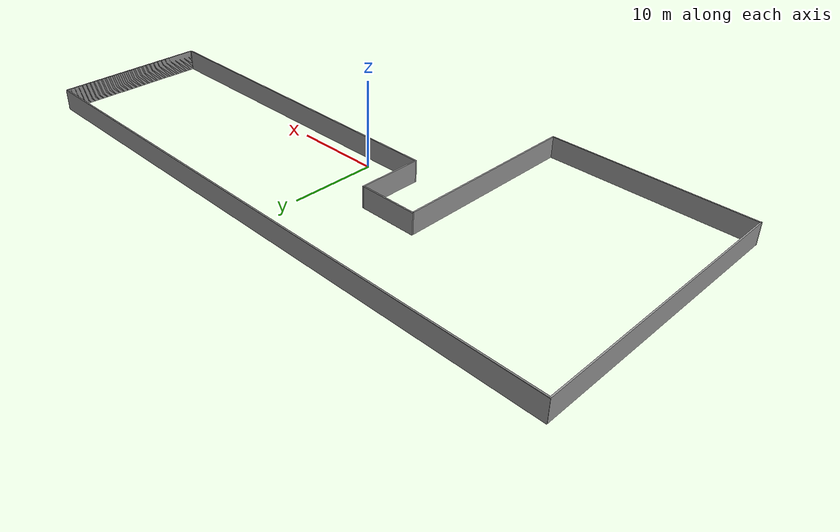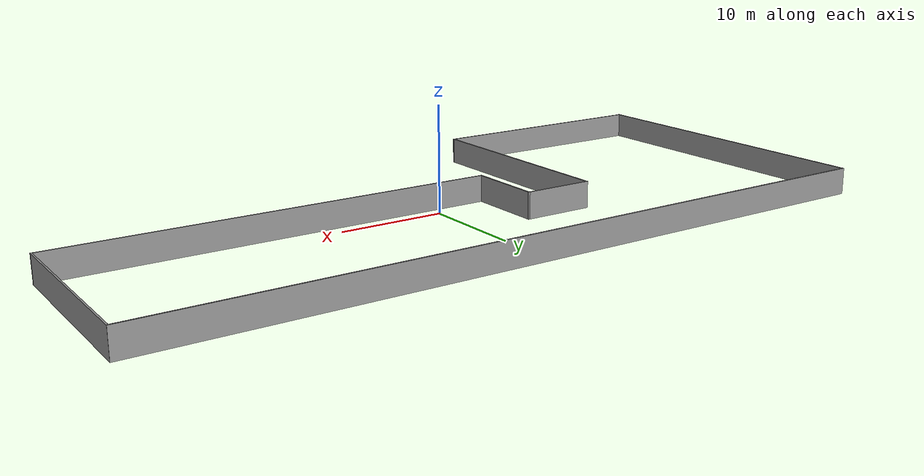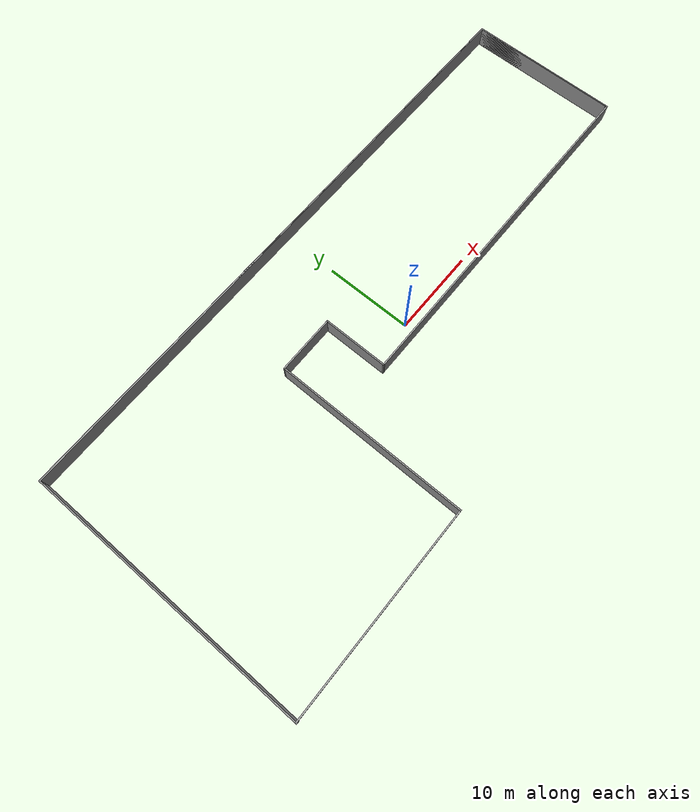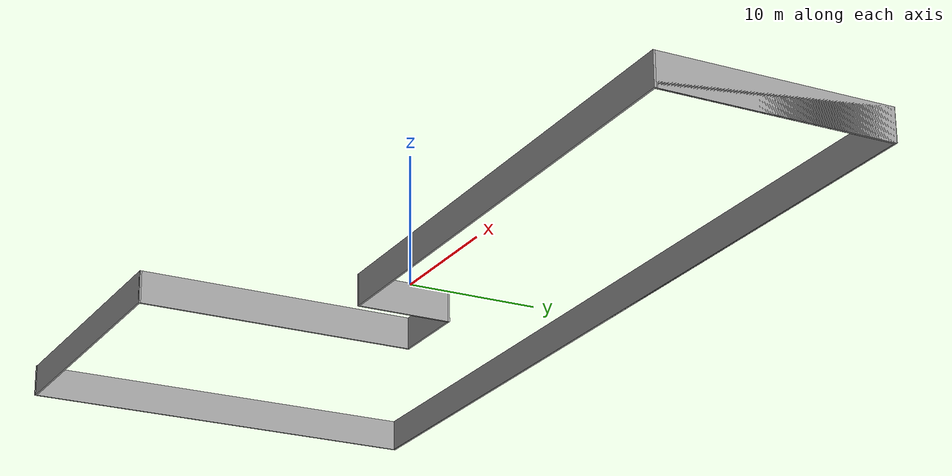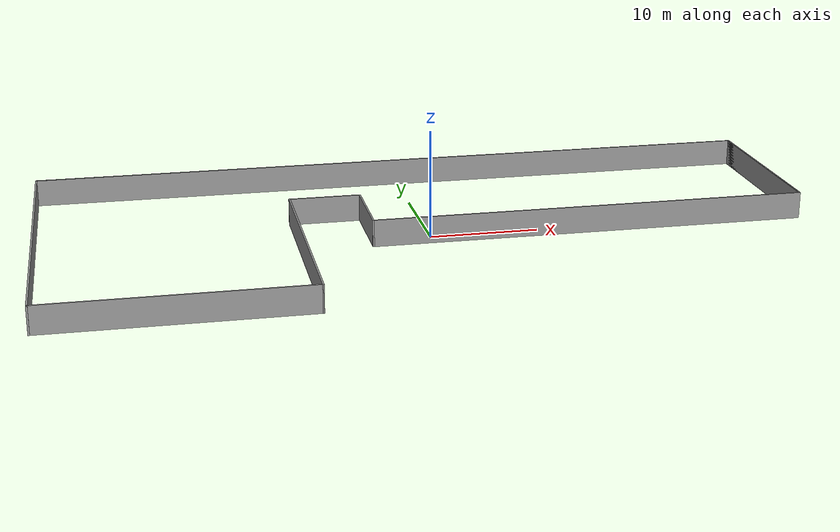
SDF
<?xml version='1.0'?>
<sdf version='1.6'>
  <model name='Altorfer'>
    <pose frame=''>-0.098526 0.142129 0 0 -0 0</pose>
    <link name='Wall_0'>
      <collision name='Wall_0_Collision'>
        <geometry>
          <box>
            <size>70.5 0.15 2.5</size>
          </box>
        </geometry>
        <pose frame=''>0 0 1.25 0 -0 0</pose>
      </collision>
      <visual name='Wall_0_Visual'>
        <pose frame=''>0 0 1.25 0 -0 0</pose>
        <geometry>
          <box>
            <size>70.5 0.15 2.5</size>
          </box>
        </geometry>
        <material>
          <script>
            <uri>file://media/materials/scripts/gazebo.material</uri>
            <name>Gazebo/Grey</name>
          </script>
          <ambient>1 1 1 1</ambient>
        </material>
        <meta>
          <layer>0</layer>
        </meta>
      </visual>
      <pose frame=''>0.00181 16.0233 0 0 -0 0</pose>
    </link>
    <link name='Wall_1'>
      <collision name='Wall_1_Collision'>
        <geometry>
          <box>
            <size>17.75 0.15 2.5</size>
          </box>
        </geometry>
        <pose frame=''>0 0 1.25 0 -0 0</pose>
      </collision>
      <visual name='Wall_1_Visual'>
        <pose frame=''>0 0 1.25 0 -0 0</pose>
        <geometry>
          <box>
            <size>17.75 0.15 2.5</size>
          </box>
        </geometry>
        <material>
          <script>
            <uri>file://media/materials/scripts/gazebo.material</uri>
            <name>Gazebo/Grey</name>
          </script>
          <ambient>1 1 1 1</ambient>
        </material>
        <meta>
          <layer>0</layer>
        </meta>
      </visual>
      <pose frame=''>35.1768 7.22331 0 0 0 -1.5708</pose>
    </link>
    <link name='Wall_10'>
      <collision name='Wall_10_Collision'>
        <geometry>
          <box>
            <size>70.5035 0.15 2.5</size>
          </box>
        </geometry>
        <pose frame=''>0 0 1.25 0 -0 0</pose>
      </collision>
      <visual name='Wall_10_Visual'>
        <pose frame=''>0 0 1.25 0 -0 0</pose>
        <geometry>
          <box>
            <size>70.5035 0.15 2.5</size>
          </box>
        </geometry>
        <material>
          <script>
            <uri>file://media/materials/scripts/gazebo.material</uri>
            <name>Gazebo/Grey</name>
          </script>
          <ambient>1 1 1 1</ambient>
        </material>
        <meta>
          <layer>0</layer>
        </meta>
      </visual>
      <pose frame=''>5.9e-05 16.0501 0 0 0 -0.00076</pose>
    </link>
    <link name='Wall_12'>
      <collision name='Wall_12_Collision'>
        <geometry>
          <box>
            <size>70.5035 0.15 2.5</size>
          </box>
        </geometry>
        <pose frame=''>0 0 1.25 0 -0 0</pose>
      </collision>
      <visual name='Wall_12_Visual'>
        <pose frame=''>0 0 1.25 0 -0 0</pose>
        <geometry>
          <box>
            <size>70.5035 0.15 2.5</size>
          </box>
        </geometry>
        <material>
          <script>
            <uri>file://media/materials/scripts/gazebo.material</uri>
            <name>Gazebo/Grey</name>
          </script>
          <ambient>1 1 1 1</ambient>
        </material>
        <meta>
          <layer>0</layer>
        </meta>
      </visual>
      <pose frame=''>5.9e-05 16.0501 0 0 0 -0.00076</pose>
    </link>
    <link name='Wall_13'>
      <collision name='Wall_13_Collision'>
        <geometry>
          <box>
            <size>0.15 0.15 2.5</size>
          </box>
        </geometry>
        <pose frame=''>0 0 1.25 0 -0 0</pose>
      </collision>
      <visual name='Wall_13_Visual'>
        <pose frame=''>0 0 1.25 0 -0 0</pose>
        <geometry>
          <box>
            <size>0.15 0.15 2.5</size>
          </box>
        </geometry>
        <material>
          <script>
            <uri>file://media/materials/scripts/gazebo.material</uri>
            <name>Gazebo/Grey</name>
          </script>
          <ambient>1 1 1 1</ambient>
        </material>
        <meta>
          <layer>0</layer>
        </meta>
      </visual>
      <pose frame=''>35.1768 16.0233 0 0 -0 0</pose>
    </link>
    <link name='Wall_14'>
      <collision name='Wall_14_Collision'>
        <geometry>
          <box>
            <size>17.5 0.15 2.5</size>
          </box>
        </geometry>
        <pose frame=''>0 0 1.25 0 -0 0</pose>
      </collision>
      <visual name='Wall_14_Visual'>
        <pose frame=''>0 0 1.25 0 -0 0</pose>
        <geometry>
          <box>
            <size>17.5 0.15 2.5</size>
          </box>
        </geometry>
        <material>
          <script>
            <uri>file://media/materials/scripts/gazebo.material</uri>
            <name>Gazebo/Grey</name>
          </script>
          <ambient>1 1 1 1</ambient>
        </material>
        <meta>
          <layer>0</layer>
        </meta>
      </visual>
      <pose frame=''>35.1768 7.34831 0 0 0 -1.5708</pose>
    </link>
    <link name='Wall_2'>
      <collision name='Wall_2_Collision'>
        <geometry>
          <box>
            <size>40.75 0.15 2.5</size>
          </box>
        </geometry>
        <pose frame=''>0 0 1.25 0 -0 0</pose>
      </collision>
      <visual name='Wall_2_Visual'>
        <pose frame=''>0 0 1.25 0 -0 0</pose>
        <geometry>
          <box>
            <size>40.75 0.15 2.5</size>
          </box>
        </geometry>
        <material>
          <script>
            <uri>file://media/materials/scripts/gazebo.material</uri>
            <name>Gazebo/Grey</name>
          </script>
          <ambient>1 1 1 1</ambient>
        </material>
        <meta>
          <layer>0</layer>
        </meta>
      </visual>
      <pose frame=''>14.8768 -1.57669 0 0 -0 3.14159</pose>
    </link>
    <link name='Wall_3'>
      <collision name='Wall_3_Collision'>
        <geometry>
          <box>
            <size>7.5 0.15 2.5</size>
          </box>
        </geometry>
        <pose frame=''>0 0 1.25 0 -0 0</pose>
      </collision>
      <visual name='Wall_3_Visual'>
        <pose frame=''>0 0 1.25 0 -0 0</pose>
        <geometry>
          <box>
            <size>7.5 0.15 2.5</size>
          </box>
        </geometry>
        <material>
          <script>
            <uri>file://media/materials/scripts/gazebo.material</uri>
            <name>Gazebo/Grey</name>
          </script>
          <ambient>1 1 1 1</ambient>
        </material>
        <meta>
          <layer>0</layer>
        </meta>
      </visual>
      <pose frame=''>-5.42319 2.09831 0 0 -0 1.5708</pose>
    </link>
    <link name='Wall_4'>
      <collision name='Wall_4_Collision'>
        <geometry>
          <box>
            <size>6.75 0.15 2.5</size>
          </box>
        </geometry>
        <pose frame=''>0 0 1.25 0 -0 0</pose>
      </collision>
      <visual name='Wall_4_Visual'>
        <pose frame=''>0 0 1.25 0 -0 0</pose>
        <geometry>
          <box>
            <size>6.75 0.15 2.5</size>
          </box>
        </geometry>
        <material>
          <script>
            <uri>file://media/materials/scripts/gazebo.material</uri>
            <name>Gazebo/Grey</name>
          </script>
          <ambient>1 1 1 1</ambient>
        </material>
        <meta>
          <layer>0</layer>
        </meta>
      </visual>
      <pose frame=''>-8.72319 5.77331 0 0 -0 3.14159</pose>
    </link>
    <link name='Wall_5'>
      <collision name='Wall_5_Collision'>
        <geometry>
          <box>
            <size>22 0.15 2.5</size>
          </box>
        </geometry>
        <pose frame=''>0 0 1.25 0 -0 0</pose>
      </collision>
      <visual name='Wall_5_Visual'>
        <pose frame=''>0 0 1.25 0 -0 0</pose>
        <geometry>
          <box>
            <size>22 0.15 2.5</size>
          </box>
        </geometry>
        <material>
          <script>
            <uri>file://media/materials/scripts/gazebo.material</uri>
            <name>Gazebo/Grey</name>
          </script>
          <ambient>1 1 1 1</ambient>
        </material>
        <meta>
          <layer>0</layer>
        </meta>
      </visual>
      <pose frame=''>-12.0232 -5.15169 0 0 0 -1.5708</pose>
    </link>
    <link name='Wall_6'>
      <collision name='Wall_6_Collision'>
        <geometry>
          <box>
            <size>23.3036 0.15 2.5</size>
          </box>
        </geometry>
        <pose frame=''>0 0 1.25 0 -0 0</pose>
      </collision>
      <visual name='Wall_6_Visual'>
        <pose frame=''>0 0 1.25 0 -0 0</pose>
        <geometry>
          <box>
            <size>23.3036 0.15 2.5</size>
          </box>
        </geometry>
        <material>
          <script>
            <uri>file://media/materials/scripts/gazebo.material</uri>
            <name>Gazebo/Grey</name>
          </script>
          <ambient>1 1 1 1</ambient>
        </material>
        <meta>
          <layer>0</layer>
        </meta>
      </visual>
      <pose frame=''>-23.5999 -16.0499 0 0 -0 3.13928</pose>
    </link>
    <link name='Wall_7'>
      <collision name='Wall_7_Collision'>
        <geometry>
          <box>
            <size>32.25 0.15 2.5</size>
          </box>
        </geometry>
        <pose frame=''>0 0 1.25 0 -0 0</pose>
      </collision>
      <visual name='Wall_7_Visual'>
        <pose frame=''>0 0 1.25 0 -0 0</pose>
        <geometry>
          <box>
            <size>32.25 0.15 2.5</size>
          </box>
        </geometry>
        <material>
          <script>
            <uri>file://media/materials/scripts/gazebo.material</uri>
            <name>Gazebo/Grey</name>
          </script>
          <ambient>1 1 1 1</ambient>
        </material>
        <meta>
          <layer>0</layer>
        </meta>
      </visual>
      <pose frame=''>-35.1767 -0.026693 0 0 -0 1.5708</pose>
    </link>
    <link name='Wall_8'>
      <collision name='Wall_8_Collision'>
        <geometry>
          <box>
            <size>70.5035 0.15 2.5</size>
          </box>
        </geometry>
        <pose frame=''>0 0 1.25 0 -0 0</pose>
      </collision>
      <visual name='Wall_8_Visual'>
        <pose frame=''>0 0 1.25 0 -0 0</pose>
        <geometry>
          <box>
            <size>70.5035 0.15 2.5</size>
          </box>
        </geometry>
        <material>
          <script>
            <uri>file://media/materials/scripts/gazebo.material</uri>
            <name>Gazebo/Grey</name>
          </script>
          <ambient>1 1 1 1</ambient>
        </material>
        <meta>
          <layer>0</layer>
        </meta>
      </visual>
      <pose frame=''>5.9e-05 16.0501 0 0 0 -0.00076</pose>
    </link>
    <static>1</static>
  </model>
</sdf>
